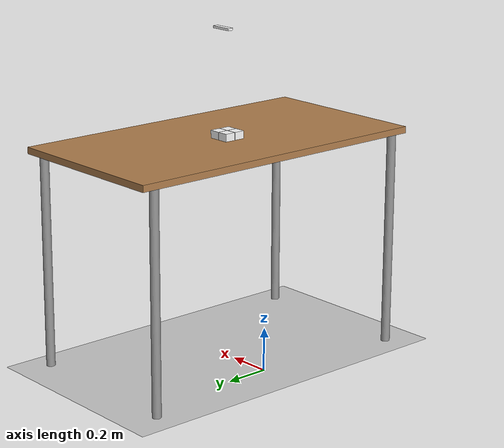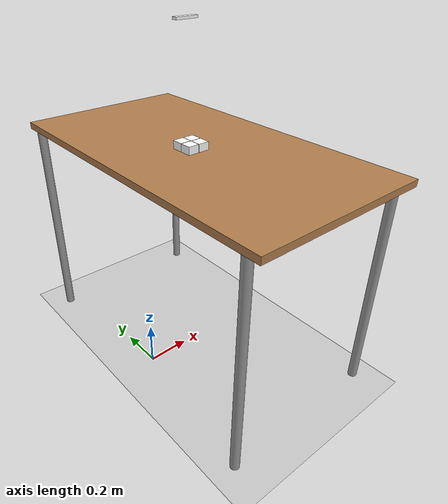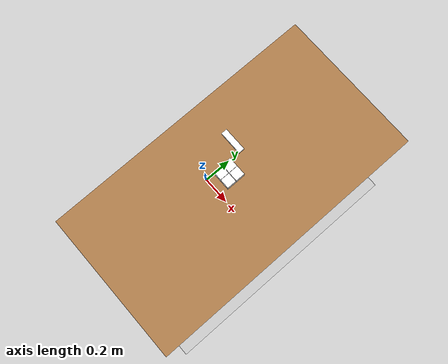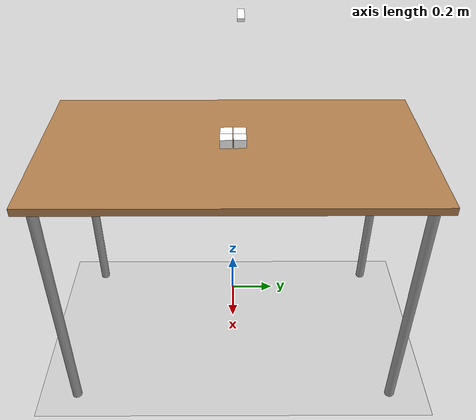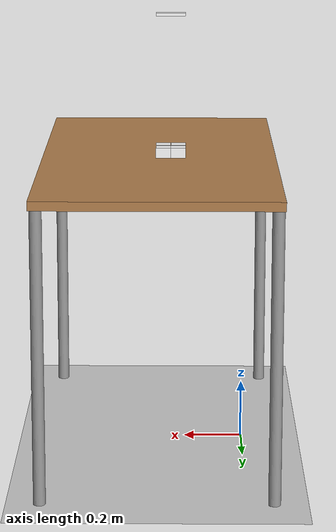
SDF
<?xml version="1.0" ?>
<sdf version="1.6">
  <world name="CRANE-X7 with Table">
    <scene>
      <shadows>0</shadows>
    </scene>

    <include>
      <uri>model://sun</uri>
    </include>

    <model name="table">
      <include>
        <uri>model://table</uri>
      </include>

      <!-- X7を机の端に配置するため、机を移動、回転する -->
      <pose>0.29 0 0 0 0 1.5708</pose>
    </model>

    <!-- box1 right bottom row -->
    <model name="wood_cube1">
      <include>
        <uri>model://wood_cube_5cm</uri>
      </include>

      <pose>0.225 -0.026 1.0 0 0 0</pose>
    </model>

    <!-- box2 left bottom row -->
    <model name="wood_cube2">
      <include>
        <uri>model://wood_cube_5cm</uri>
      </include>

      <pose>0.225 0.026 1.0 0 0 0</pose>
    </model>

    <!-- box3 right bottom row -->
    <model name="wood_cube3">
      <include>
        <uri>model://wood_cube_5cm</uri>
      </include>

      <pose>0.276 -0.026 1.0 0 0 0</pose>
    </model>

    <!-- box4 left bottom row -->
    <model name="wood_cube4">
      <include>
        <uri>model://wood_cube_5cm</uri>
      </include>

      <pose>0.276 0.026 1.0 0 0 0</pose>
    </model>

    <!-- box5 long box on top -->
    <model name="wood_box10cm">
      <include>
        <uri>model://wood_block_10_2_1cm</uri>
      </include>

      <pose>0.25 0.026 1.5 0 0 0</pose>
    </model>

    <model name="ground_plane">
      <include>
        <uri>model://ground_plane</uri>
      </include>

      <joint name='ground_joint' type='fixed'>
        <parent>ground_plane::link</parent>
        <child>table::link</child>
      </joint>
    </model>
  </world>
</sdf>

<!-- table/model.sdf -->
<sdf version="1.5">
  <model name="table">
    <static>true</static>
    <link name="link">
      <collision name="surface">
        <pose>0 0 1.0 0 0 0</pose>
        <geometry>
          <box>
            <size>1.5 0.8 0.03</size>
          </box>
        </geometry>
        <surface>
          <friction>
            <ode>
              <mu>0.6</mu>
              <mu2>0.6</mu2>
            </ode>
          </friction>
        </surface>
      </collision>
      <visual name="visual1">
        <pose>0 0 1.0 0 0 0</pose>
        <geometry>
          <box>
            <size>1.5 0.8 0.03</size>
          </box>
        </geometry>
        <material>
          <script>
            <uri>model://media/materials/scripts/gazebo.material</uri>
            <name>Gazebo/Wood</name>
          </script>
        </material>
      </visual>
      <collision name="front_left_leg">
        <pose>0.68 0.38 0.5 0 0 0</pose>
        <geometry>
          <cylinder>
            <radius>0.02</radius>
            <length>1.0</length>
          </cylinder>
        </geometry>
      </collision>
      <visual name="front_left_leg">
        <pose>0.68 0.38 0.5 0 0 0</pose>
        <geometry>
          <cylinder>
            <radius>0.02</radius>
            <length>1.0</length>
          </cylinder>
        </geometry>
        <material>
          <script>
            <uri>model://media/materials/scripts/gazebo.material</uri>
            <name>Gazebo/Grey</name>
          </script>
        </material>
      </visual>
      <collision name="front_right_leg">
        <pose>0.68 -0.38 0.5 0 0 0</pose>
        <geometry>
          <cylinder>
            <radius>0.02</radius>
            <length>1.0</length>
          </cylinder>
        </geometry>
      </collision>
      <visual name="front_right_leg">
        <pose>0.68 -0.38 0.5 0 0 0</pose>
        <geometry>
          <cylinder>
            <radius>0.02</radius>
            <length>1.0</length>
          </cylinder>
        </geometry>
        <material>
          <script>
            <uri>model://media/materials/scripts/gazebo.material</uri>
            <name>Gazebo/Grey</name>
          </script>
        </material>
      </visual>
      <collision name="back_right_leg">
        <pose>-0.68 -0.38 0.5 0 0 0</pose>
        <geometry>
          <cylinder>
            <radius>0.02</radius>
            <length>1.0</length>
          </cylinder>
        </geometry>
      </collision>
      <visual name="back_right_leg">
        <pose>-0.68 -0.38 0.5 0 0 0</pose>
        <geometry>
          <cylinder>
            <radius>0.02</radius>
            <length>1.0</length>
          </cylinder>
        </geometry>
        <material>
          <script>
            <uri>model://media/materials/scripts/gazebo.material</uri>
            <name>Gazebo/Grey</name>
          </script>
        </material>
      </visual>
      <collision name="back_left_leg">
        <pose>-0.68 0.38 0.5 0 0 0</pose>
        <geometry>
          <cylinder>
            <radius>0.02</radius>
            <length>1.0</length>
          </cylinder>
        </geometry>
      </collision>
      <visual name="back_left_leg">
        <pose>-0.68 0.38 0.5 0 0 0</pose>
        <geometry>
          <cylinder>
            <radius>0.02</radius>
            <length>1.0</length>
          </cylinder>
        </geometry>
        <material>
          <script>
            <uri>model://media/materials/scripts/gazebo.material</uri>
            <name>Gazebo/Grey</name>
          </script>
        </material>
      </visual>
    </link>
  </model>
</sdf>

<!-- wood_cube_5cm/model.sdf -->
<sdf version="1.5">
  <model name="wood_cube_5cm">
    <link name="link">
      <pose>0 0 0.025 0 0 0</pose>
      <inertial>
        <mass>0.0565</mass>
        <inertia>
          <ixx>2.3541666666666672e-05</ixx>
          <ixy>0</ixy>
          <ixz>0</ixz>
          <iyy>2.3541666666666672e-05</iyy>
          <iyz>0</iyz>
          <izz>2.3541666666666672e-05</izz>
        </inertia>
      </inertial>

      <collision name="collision">
        <geometry>
          <box>
            <size>0.05 0.05 0.05</size>
          </box>
        </geometry>
        <surface>
          <contact>
            <!-- Red Pine coefficients for longitudinal axis of the wood
                 according to:
                 http://www.fpl.fs.fed.us/documnts/fplgtr/fplgtr113/ch04.pdf -->
            <poissons_ratio>0.347</poissons_ratio>
            <elastic_modulus>8.8e+09</elastic_modulus>
            <ode>
              <kp>100000</kp>
              <kd>1</kd>
              <max_vel>1.0</max_vel>
              <min_depth>0.001</min_depth>
            </ode>
          </contact>
          <friction>
            <torsional>
              <coefficient>1.0</coefficient>
              <use_patch_radius>0</use_patch_radius>
              <surface_radius>0.05</surface_radius>
            </torsional>
          </friction>
        </surface>
      </collision>

      <visual name="visual">
        <geometry>
          <box>
            <size>0.05 0.05 0.05</size>
          </box>
        </geometry>
        <material><diffuse>1 1 1 1</diffuse><specular>0.1 0.1 0.1 1</specular></material>
      </visual>

    </link>
  </model>
</sdf>

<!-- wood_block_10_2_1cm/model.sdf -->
<sdf version="1.5">
  <model name="wood_block_10_2_1cm">
    <link name="link">
      <pose>0 0 0.005 0 0 0</pose>
      <inertial>
        <mass>0.0125</mass>
        <inertia>
          <ixx>7.552083333333335e-07</ixx>
          <ixy>0</ixy>
          <ixz>0</ixz>
          <iyy>1.0520833333333334e-05</iyy>
          <iyz>0</iyz>
          <izz>1.1067708333333336e-05</izz>
        </inertia>
      </inertial>

      <collision name="collision">
        <geometry>
          <box>
            <size>0.1 0.025 0.01</size>
          </box>
        </geometry>
        <surface>
          <contact>
            <!-- Red Pine coefficients for longitudinal axis of the wood
                 according to:
                 http://www.fpl.fs.fed.us/documnts/fplgtr/fplgtr113/ch04.pdf -->
            <poissons_ratio>0.347</poissons_ratio>
            <elastic_modulus>8.8e+09</elastic_modulus>
            <ode>
              <kp>100000</kp>
              <kd>1</kd>
              <max_vel>1.0</max_vel>
              <min_depth>0.001</min_depth>
            </ode>
          </contact>
          <friction>
            <torsional>
              <coefficient>1.0</coefficient>
              <use_patch_radius>0</use_patch_radius>
              <surface_radius>0.05</surface_radius>
            </torsional>
          </friction>
        </surface>
      </collision>

      <visual name="visual">
        <geometry>
          <box>
            <size>0.1 0.025 0.01</size>
          </box>
        </geometry>
        <material><diffuse>1 1 1 1</diffuse><specular>0.1 0.1 0.1 1</specular></material>
      </visual>

    </link>
  </model>
</sdf>
